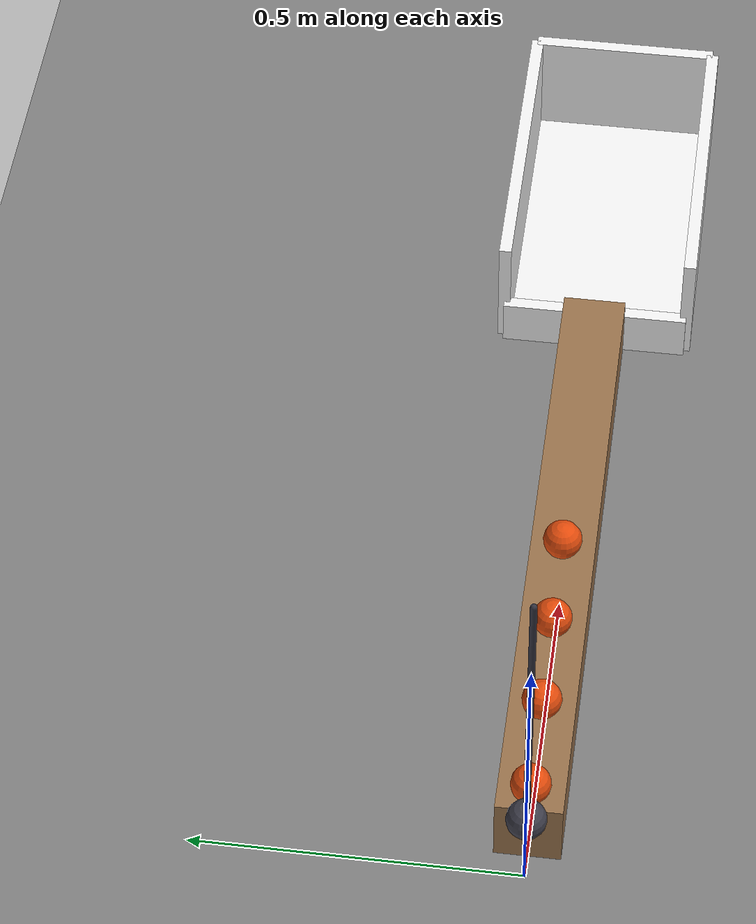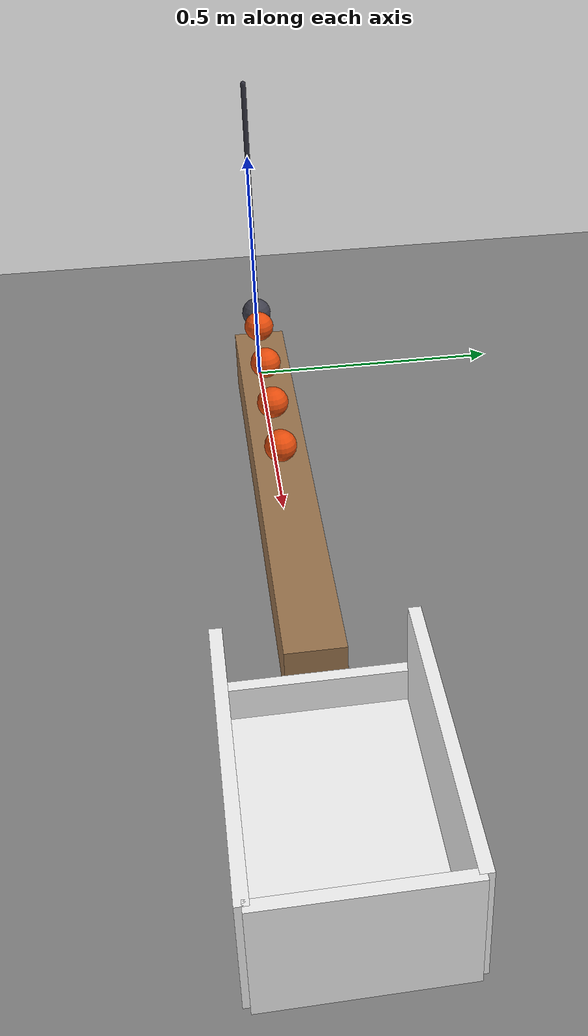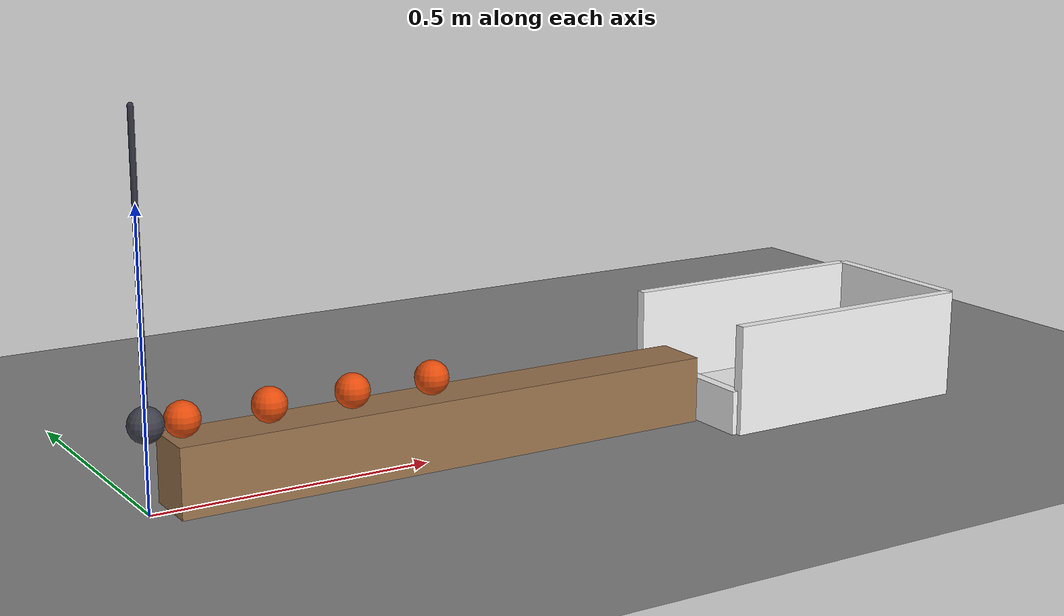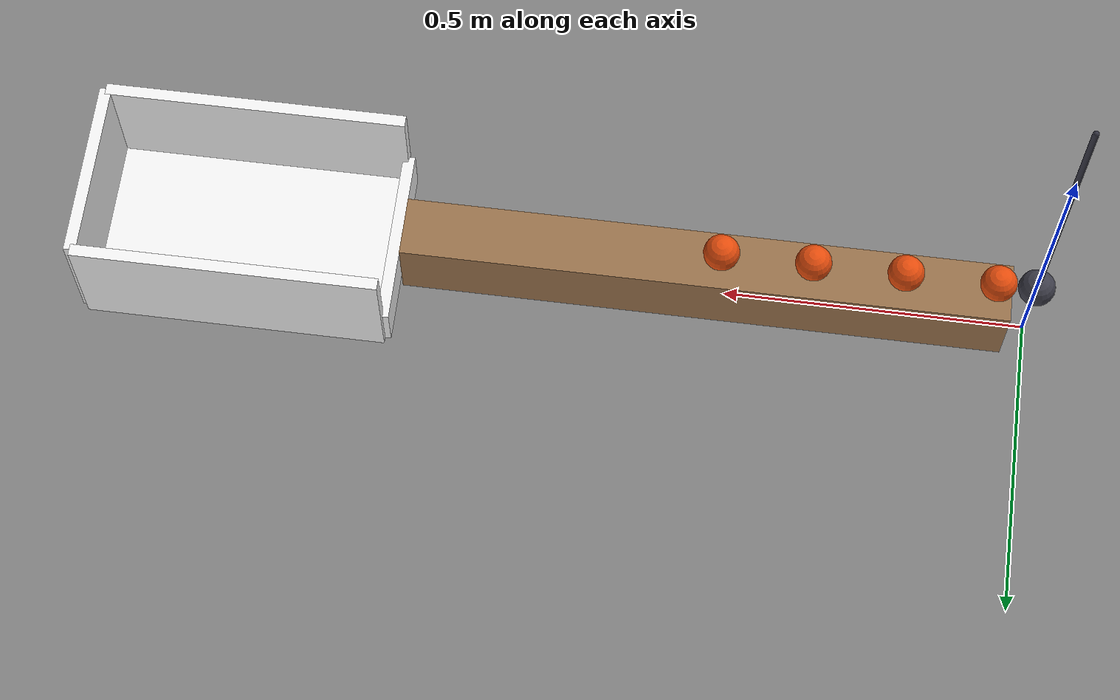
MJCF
<mujoco model="pendulum_chain_into_a_box">
  <compiler angle="radian"/>
  <option timestep="0.002"/>
  <worldbody>
    <geom name="floor" type="plane" size="6 6 0.1" friction="0.8 0.005 0.002"/>
    <body name="pendulum" pos="0 0 0.65">
      <joint name="pendulum_hinge" type="hinge" pos="0 0 0" axis="0 1 0"/>
      <geom name="pendulum" type="sphere" pos="0 0 -0.5" size="0.03" mass="0.1" solref="0.01 0.2" rgba="0.25 0.25 0.3 1"/>
      <geom name="pendulum rod" type="capsule" size="0.005" fromto="0 0 0 0 0 -0.47" mass="0.005" contype="0" conaffinity="0" rgba="0.2 0.2 0.25 1"/>
    </body>
    <body name="rail">
      <geom name="rail" type="box" pos="0.535 0 0.06" size="0.5 0.05 0.06" friction="0.6 0.002 0.0005" rgba="0.6 0.45 0.3 1"/>
    </body>
    <body name="ball1" pos="0.061 0 0.15">
      <freejoint/>
      <geom name="ball1" type="sphere" pos="0 0 0" size="0.03" mass="0.1" condim="6" friction="0.5 0.002 0.0005" solref="0.01 0.2" rgba="0.9 0.3 0.05 1"/>
    </body>
    <body name="ball2" pos="0.211 0 0.15">
      <freejoint/>
      <geom name="ball2" type="sphere" pos="0 0 0" size="0.03" mass="0.1" condim="6" friction="0.5 0.002 0.0005" solref="0.01 0.2" rgba="0.9 0.3 0.05 1"/>
    </body>
    <body name="ball3" pos="0.361 0 0.15">
      <freejoint/>
      <geom name="ball3" type="sphere" pos="0 0 0" size="0.03" mass="0.1" condim="6" friction="0.5 0.002 0.0005" solref="0.01 0.2" rgba="0.9 0.3 0.05 1"/>
    </body>
    <body name="ball4" pos="0.511 0 0.15">
      <freejoint/>
      <geom name="ball4" type="sphere" pos="0 0 0" size="0.03" mass="0.1" condim="6" friction="0.5 0.002 0.0005" solref="0.01 0.2" rgba="0.9 0.3 0.05 1"/>
    </body>
    <body name="box">
      <geom name="box_base" type="box" pos="1.3 0 0.01" size="0.25 0.15 0.01" friction="0.9 0.01 0.02" solref="0.01 1" rgba="0.95 0.95 0.95 1"/>
      <geom name="box_near_wall" type="box" pos="1.05 0 0.04" size="0.01 0.15 0.04" friction="0.9 0.01 0.02" solref="0.01 1" rgba="0.95 0.95 0.95 1"/>
      <geom name="box_far_wall" type="box" pos="1.55 0 0.1" size="0.01 0.15 0.1" friction="0.9 0.01 0.02" solref="0.01 1" rgba="0.95 0.95 0.95 1"/>
      <geom name="box_left_wall" type="box" pos="1.3 0.15 0.1" size="0.25 0.01 0.1" friction="0.9 0.01 0.02" solref="0.01 1" rgba="0.95 0.95 0.95 1"/>
      <geom name="box_right_wall" type="box" pos="1.3 -0.15 0.1" size="0.25 0.01 0.1" friction="0.9 0.01 0.02" solref="0.01 1" rgba="0.95 0.95 0.95 1"/>
    </body>
  </worldbody>
  <keyframe>
    <key name="start" qpos="1.5708 0.061 0 0.15 1 0 0 0 0.211 0 0.15 1 0 0 0 0.361 0 0.15 1 0 0 0 0.511 0 0.15 1 0 0 0" qvel="0 0 0 0 0 0 0 0 0 0 0 0 0 0 0 0 0 0 0 0 0 0 0 0 0"/>
  </keyframe>
</mujoco>
